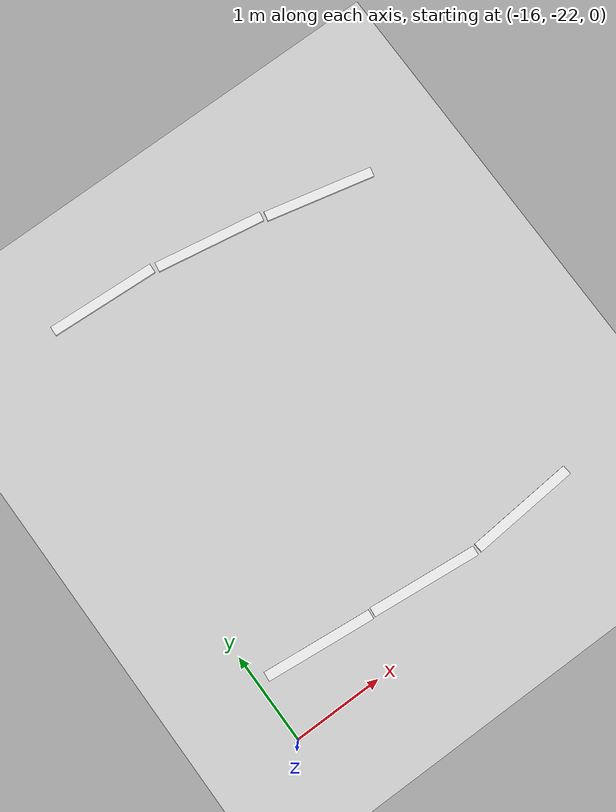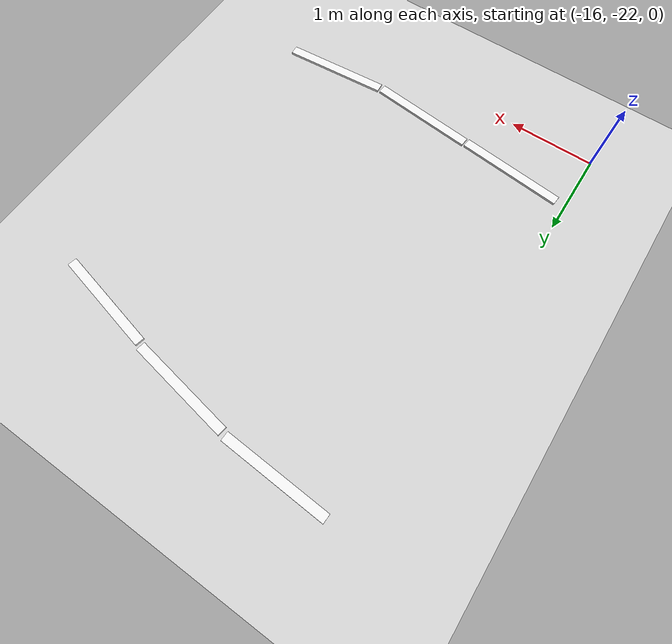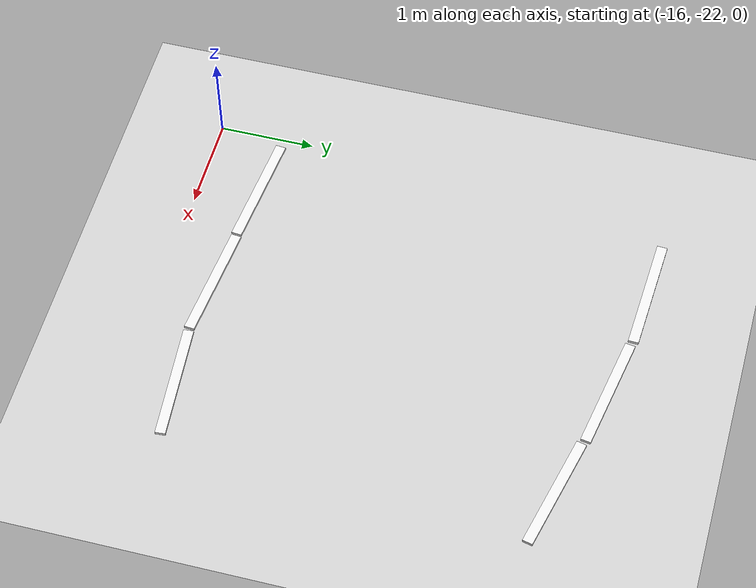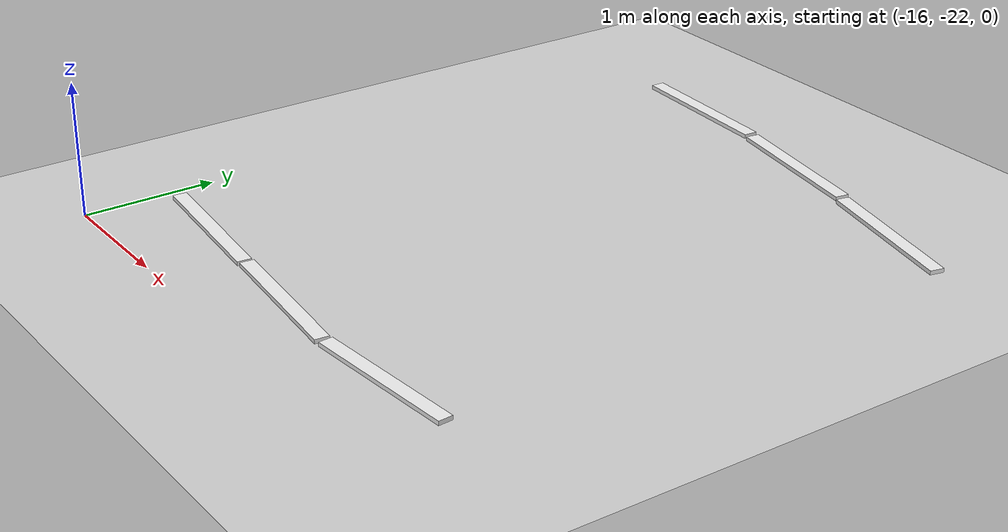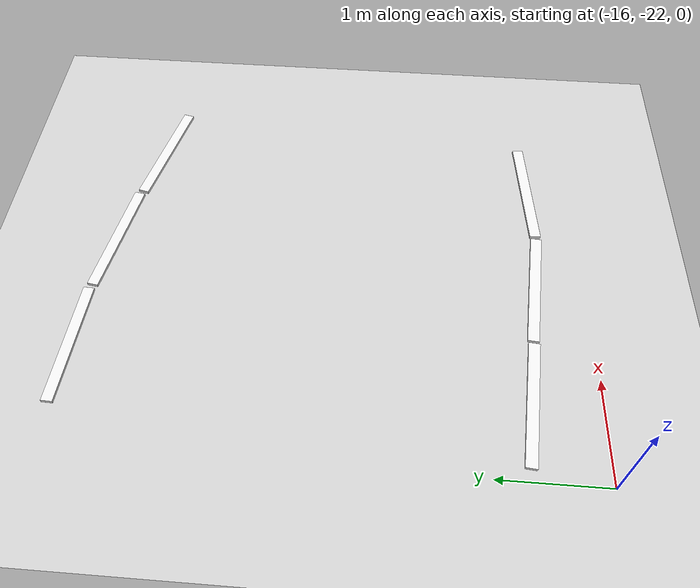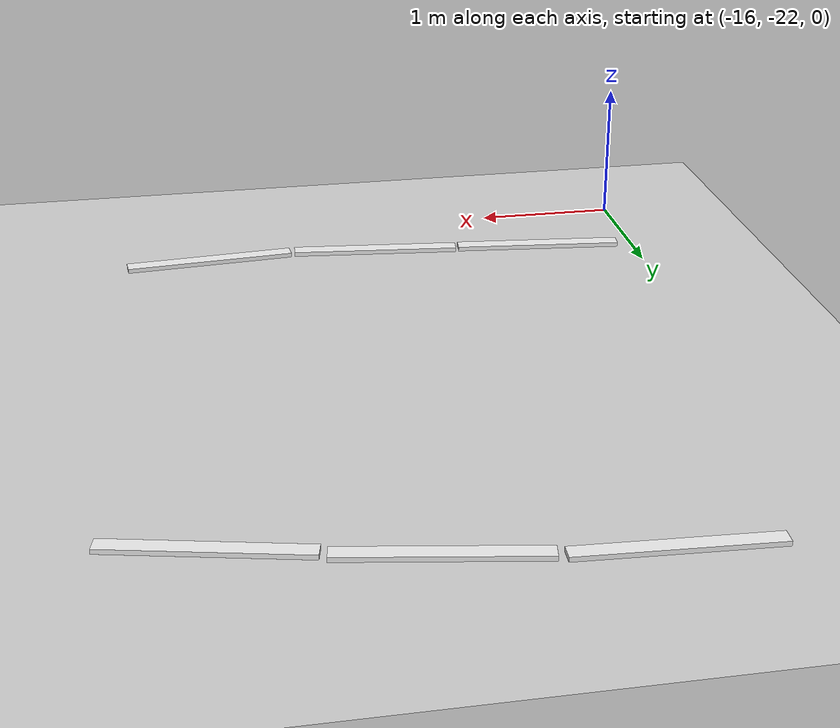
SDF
<sdf version="1.7">
 <world name="default">
  <model name="ground_plane">
   <static>1</static>
   <link name="link">
    <collision name="collision">
     <geometry><plane><normal>0 0 1</normal><size>100 100</size></plane></geometry>
     <surface><friction><ode><mu>100</mu><mu2>50</mu2></ode></friction></surface>
    </collision>
    <visual name="visual">
     <cast_shadows>0</cast_shadows>
     <geometry><plane><normal>0 0 1</normal><size>100 100</size></plane></geometry>
     <material>
      <script><uri>file://media/materials/scripts/gazebo.material</uri><name>Gazebo/Grey</name></script>
     </material>
    </visual>
   </link>
  </model>
  <model name="road_way_1_clone_clone">
   <link name="link">
    <inertial>
     <mass>1</mass>
     <inertia>
      <ixx>0.166667</ixx>
      <ixy>0</ixy>
      <ixz>0</ixz>
      <iyy>0.166667</iyy>
      <iyz>0</iyz>
      <izz>0.166667</izz>
     </inertia>
    </inertial>
    <visual name="visual">
     <geometry><box><size>0.106644 1.22348 0.03129</size></box></geometry>
     <material>
      <script><name>Gazebo/White</name><uri>file://media/materials/scripts/gazebo.material</uri></script>
      <shader type="pixel"><normal_map>__default__</normal_map></shader>
      <ambient>1 1 1 1</ambient>
      <diffuse>1 1 1 1</diffuse>
      <specular>0 0 0 1</specular>
      <emissive>0 0 0 1</emissive>
     </material>
    </visual>
    <collision name="collision">
     <geometry><box><size>0.10644 1.22348 0.03129</size></box></geometry>
     <surface>
      <friction>
       <ode><mu>1</mu><mu2>1</mu2><fdir1>0 0 0</fdir1><slip1>0</slip1><slip2>0</slip2></ode>
       <torsional>
        <coefficient>1</coefficient>
        <patch_radius>0</patch_radius>
        <surface_radius>0</surface_radius>
        <use_patch_radius>1</use_patch_radius>
        <ode><slip>0</slip></ode>
       </torsional>
      </friction>
      <bounce><restitution_coefficient>0</restitution_coefficient><threshold>1e+06</threshold></bounce>
      <contact>
       <collide_without_contact>0</collide_without_contact>
       <collide_without_contact_bitmask>1</collide_without_contact_bitmask>
       <collide_bitmask>1</collide_bitmask>
       <ode>
        <soft_cfm>0</soft_cfm>
        <soft_erp>0.2</soft_erp>
        <kp>1e+13</kp>
        <kd>1</kd>
        <max_vel>0.01</max_vel>
        <min_depth>0</min_depth>
       </ode>
       <bullet>
        <split_impulse>1</split_impulse>
        <split_impulse_penetration_threshold>-0.01</split_impulse_penetration_threshold>
        <soft_cfm>0</soft_cfm>
        <soft_erp>0.2</soft_erp>
        <kp>1e+13</kp>
        <kd>1</kd>
       </bullet>
      </contact>
     </surface>
    </collision>
   </link>
   <static>0</static>
   <pose>-15.2801 -21.3761 0.015638 1.1e-05 -0 1.47153</pose>
  </model>
  <model name="road_way_1_clone_clone_clone">
   <link name="link">
    <inertial>
     <mass>1</mass>
     <inertia>
      <ixx>0.166667</ixx>
      <ixy>0</ixy>
      <ixz>0</ixz>
      <iyy>0.166667</iyy>
      <iyz>0</iyz>
      <izz>0.166667</izz>
     </inertia>
    </inertial>
    <visual name="visual">
     <geometry><box><size>0.106644 1.22348 0.03129</size></box></geometry>
     <material>
      <script><name>Gazebo/White</name><uri>file://media/materials/scripts/gazebo.material</uri></script>
      <shader type="pixel"><normal_map>__default__</normal_map></shader>
      <ambient>1 1 1 1</ambient>
      <diffuse>1 1 1 1</diffuse>
      <specular>0 0 0 1</specular>
      <emissive>0 0 0 1</emissive>
     </material>
    </visual>
    <collision name="collision">
     <geometry><box><size>0.10644 1.22348 0.03129</size></box></geometry>
     <surface>
      <friction>
       <ode><mu>1</mu><mu2>1</mu2><fdir1>0 0 0</fdir1><slip1>0</slip1><slip2>0</slip2></ode>
       <torsional>
        <coefficient>1</coefficient>
        <patch_radius>0</patch_radius>
        <surface_radius>0</surface_radius>
        <use_patch_radius>1</use_patch_radius>
        <ode><slip>0</slip></ode>
       </torsional>
      </friction>
      <bounce><restitution_coefficient>0</restitution_coefficient><threshold>1e+06</threshold></bounce>
      <contact>
       <collide_without_contact>0</collide_without_contact>
       <collide_without_contact_bitmask>1</collide_without_contact_bitmask>
       <collide_bitmask>1</collide_bitmask>
       <ode>
        <soft_cfm>0</soft_cfm>
        <soft_erp>0.2</soft_erp>
        <kp>1e+13</kp>
        <kd>1</kd>
        <max_vel>0.01</max_vel>
        <min_depth>0</min_depth>
       </ode>
       <bullet>
        <split_impulse>1</split_impulse>
        <split_impulse_penetration_threshold>-0.01</split_impulse_penetration_threshold>
        <soft_cfm>0</soft_cfm>
        <soft_erp>0.2</soft_erp>
        <kp>1e+13</kp>
        <kd>1</kd>
       </bullet>
      </contact>
     </surface>
    </collision>
   </link>
   <static>0</static>
   <pose>-14.04 -21.4908 0.015638 1.1e-05 -0 1.47153</pose>
  </model>
  <model name="road_way_1_clone_clone_clone_0">
   <link name="link">
    <inertial>
     <mass>1</mass>
     <inertia>
      <ixx>0.166667</ixx>
      <ixy>0</ixy>
      <ixz>0</ixz>
      <iyy>0.166667</iyy>
      <iyz>0</iyz>
      <izz>0.166667</izz>
     </inertia>
    </inertial>
    <visual name="visual">
     <geometry><box><size>0.106644 1.22348 0.03129</size></box></geometry>
     <material>
      <script><name>Gazebo/White</name><uri>file://media/materials/scripts/gazebo.material</uri></script>
      <shader type="pixel"><normal_map>__default__</normal_map></shader>
      <ambient>1 1 1 1</ambient>
      <diffuse>1 1 1 1</diffuse>
      <specular>0 0 0 1</specular>
      <emissive>0 0 0 1</emissive>
     </material>
    </visual>
    <collision name="collision">
     <geometry><box><size>0.10644 1.22348 0.03129</size></box></geometry>
     <surface>
      <friction>
       <ode><mu>1</mu><mu2>1</mu2><fdir1>0 0 0</fdir1><slip1>0</slip1><slip2>0</slip2></ode>
       <torsional>
        <coefficient>1</coefficient>
        <patch_radius>0</patch_radius>
        <surface_radius>0</surface_radius>
        <use_patch_radius>1</use_patch_radius>
        <ode><slip>0</slip></ode>
       </torsional>
      </friction>
      <bounce><restitution_coefficient>0</restitution_coefficient><threshold>1e+06</threshold></bounce>
      <contact>
       <collide_without_contact>0</collide_without_contact>
       <collide_without_contact_bitmask>1</collide_without_contact_bitmask>
       <collide_bitmask>1</collide_bitmask>
       <ode>
        <soft_cfm>0</soft_cfm>
        <soft_erp>0.2</soft_erp>
        <kp>1e+13</kp>
        <kd>1</kd>
        <max_vel>0.01</max_vel>
        <min_depth>0</min_depth>
       </ode>
       <bullet>
        <split_impulse>1</split_impulse>
        <split_impulse_penetration_threshold>-0.01</split_impulse_penetration_threshold>
        <soft_cfm>0</soft_cfm>
        <soft_erp>0.2</soft_erp>
        <kp>1e+13</kp>
        <kd>1</kd>
       </bullet>
      </contact>
     </surface>
    </collision>
   </link>
   <static>0</static>
   <pose>-12.7887 -21.4976 0.015638 -1.1e-05 -0 1.65035</pose>
  </model>
  <model name="road_way_1_clone_clone_clone_1">
   <link name="link">
    <inertial>
     <mass>1</mass>
     <inertia>
      <ixx>0.166667</ixx>
      <ixy>0</ixy>
      <ixz>0</ixz>
      <iyy>0.166667</iyy>
      <iyz>0</iyz>
      <izz>0.166667</izz>
     </inertia>
    </inertial>
    <visual name="visual">
     <geometry><box><size>0.106644 1.22348 0.03129</size></box></geometry>
     <material>
      <script><name>Gazebo/White</name><uri>file://media/materials/scripts/gazebo.material</uri></script>
      <shader type="pixel"><normal_map>__default__</normal_map></shader>
      <ambient>1 1 1 1</ambient>
      <diffuse>1 1 1 1</diffuse>
      <specular>0 0 0 1</specular>
      <emissive>0 0 0 1</emissive>
     </material>
    </visual>
    <collision name="collision">
     <geometry><box><size>0.10644 1.22348 0.03129</size></box></geometry>
     <surface>
      <friction>
       <ode><mu>1</mu><mu2>1</mu2><fdir1>0 0 0</fdir1><slip1>0</slip1><slip2>0</slip2></ode>
       <torsional>
        <coefficient>1</coefficient>
        <patch_radius>0</patch_radius>
        <surface_radius>0</surface_radius>
        <use_patch_radius>1</use_patch_radius>
        <ode><slip>0</slip></ode>
       </torsional>
      </friction>
      <bounce><restitution_coefficient>0</restitution_coefficient><threshold>1e+06</threshold></bounce>
      <contact>
       <collide_without_contact>0</collide_without_contact>
       <collide_without_contact_bitmask>1</collide_without_contact_bitmask>
       <collide_bitmask>1</collide_bitmask>
       <ode>
        <soft_cfm>0</soft_cfm>
        <soft_erp>0.2</soft_erp>
        <kp>1e+13</kp>
        <kd>1</kd>
        <max_vel>0.01</max_vel>
        <min_depth>0</min_depth>
       </ode>
       <bullet>
        <split_impulse>1</split_impulse>
        <split_impulse_penetration_threshold>-0.01</split_impulse_penetration_threshold>
        <soft_cfm>0</soft_cfm>
        <soft_erp>0.2</soft_erp>
        <kp>1e+13</kp>
        <kd>1</kd>
       </bullet>
      </contact>
     </surface>
    </collision>
   </link>
   <static>0</static>
   <pose>-14.988 -17.1758 0.015638 1.1e-05 -0 1.52211</pose>
  </model>
  <model name="road_way_1_clone_clone_clone_clone">
   <link name="link">
    <inertial>
     <mass>1</mass>
     <inertia>
      <ixx>0.166667</ixx>
      <ixy>0</ixy>
      <ixz>0</ixz>
      <iyy>0.166667</iyy>
      <iyz>0</iyz>
      <izz>0.166667</izz>
     </inertia>
    </inertial>
    <visual name="visual">
     <geometry><box><size>0.106644 1.22348 0.03129</size></box></geometry>
     <material>
      <script><name>Gazebo/White</name><uri>file://media/materials/scripts/gazebo.material</uri></script>
      <shader type="pixel"><normal_map>__default__</normal_map></shader>
      <ambient>1 1 1 1</ambient>
      <diffuse>1 1 1 1</diffuse>
      <specular>0 0 0 1</specular>
      <emissive>0 0 0 1</emissive>
     </material>
    </visual>
    <collision name="collision">
     <geometry><box><size>0.10644 1.22348 0.03129</size></box></geometry>
     <surface>
      <friction>
       <ode><mu>1</mu><mu2>1</mu2><fdir1>0 0 0</fdir1><slip1>0</slip1><slip2>0</slip2></ode>
       <torsional>
        <coefficient>1</coefficient>
        <patch_radius>0</patch_radius>
        <surface_radius>0</surface_radius>
        <use_patch_radius>1</use_patch_radius>
        <ode><slip>0</slip></ode>
       </torsional>
      </friction>
      <bounce><restitution_coefficient>0</restitution_coefficient><threshold>1e+06</threshold></bounce>
      <contact>
       <collide_without_contact>0</collide_without_contact>
       <collide_without_contact_bitmask>1</collide_without_contact_bitmask>
       <collide_bitmask>1</collide_bitmask>
       <ode>
        <soft_cfm>0</soft_cfm>
        <soft_erp>0.2</soft_erp>
        <kp>1e+13</kp>
        <kd>1</kd>
        <max_vel>0.01</max_vel>
        <min_depth>0</min_depth>
       </ode>
       <bullet>
        <split_impulse>1</split_impulse>
        <split_impulse_penetration_threshold>-0.01</split_impulse_penetration_threshold>
        <soft_cfm>0</soft_cfm>
        <soft_erp>0.2</soft_erp>
        <kp>1e+13</kp>
        <kd>1</kd>
       </bullet>
      </contact>
     </surface>
    </collision>
   </link>
   <static>0</static>
   <pose>-13.7298 -17.3268 0.015638 1.1e-05 -0 1.40572</pose>
  </model>
  <model name="road_way_1_clone_clone_clone_0_clone">
   <link name="link">
    <inertial>
     <mass>1</mass>
     <inertia>
      <ixx>0.166667</ixx>
      <ixy>0</ixy>
      <ixz>0</ixz>
      <iyy>0.166667</iyy>
      <iyz>0</iyz>
      <izz>0.166667</izz>
     </inertia>
    </inertial>
    <visual name="visual">
     <geometry><box><size>0.106644 1.22348 0.03129</size></box></geometry>
     <material>
      <script><name>Gazebo/White</name><uri>file://media/materials/scripts/gazebo.material</uri></script>
      <shader type="pixel"><normal_map>__default__</normal_map></shader>
      <ambient>1 1 1 1</ambient>
      <diffuse>1 1 1 1</diffuse>
      <specular>0 0 0 1</specular>
      <emissive>0 0 0 1</emissive>
     </material>
    </visual>
    <collision name="collision">
     <geometry><box><size>0.10644 1.22348 0.03129</size></box></geometry>
     <surface>
      <friction>
       <ode><mu>1</mu><mu2>1</mu2><fdir1>0 0 0</fdir1><slip1>0</slip1><slip2>0</slip2></ode>
       <torsional>
        <coefficient>1</coefficient>
        <patch_radius>0</patch_radius>
        <surface_radius>0</surface_radius>
        <use_patch_radius>1</use_patch_radius>
        <ode><slip>0</slip></ode>
       </torsional>
      </friction>
      <bounce><restitution_coefficient>0</restitution_coefficient><threshold>1e+06</threshold></bounce>
      <contact>
       <collide_without_contact>0</collide_without_contact>
       <collide_without_contact_bitmask>1</collide_without_contact_bitmask>
       <collide_bitmask>1</collide_bitmask>
       <ode>
        <soft_cfm>0</soft_cfm>
        <soft_erp>0.2</soft_erp>
        <kp>1e+13</kp>
        <kd>1</kd>
        <max_vel>0.01</max_vel>
        <min_depth>0</min_depth>
       </ode>
       <bullet>
        <split_impulse>1</split_impulse>
        <split_impulse_penetration_threshold>-0.01</split_impulse_penetration_threshold>
        <soft_cfm>0</soft_cfm>
        <soft_erp>0.2</soft_erp>
        <kp>1e+13</kp>
        <kd>1</kd>
       </bullet>
      </contact>
     </surface>
    </collision>
   </link>
   <static>0</static>
   <pose>-12.4948 -17.5914 0.015638 1.1e-05 0 1.34853</pose>
  </model>
 </world>
</sdf>
